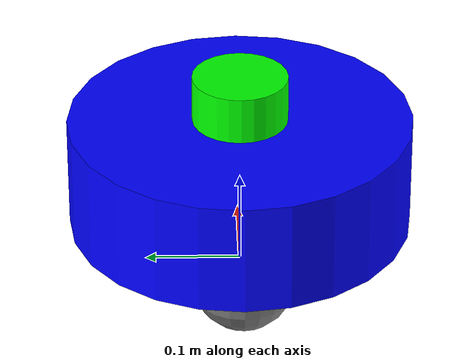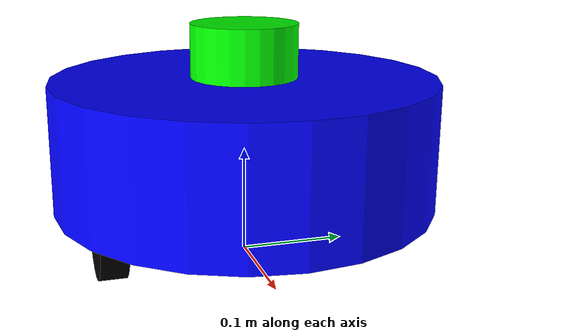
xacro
<?xml version="1.0"?>
<robot name="slam_bot" xmlns:xacro="http://www.ros.org/wiki/xacro">

  <!-- PARAMETERS -->
  <xacro:property name="base_radius" value="0.18"/>
  <xacro:property name="base_height" value="0.12"/>
  <xacro:property name="wheel_radius" value="0.05"/>
  <xacro:property name="wheel_width" value="0.025"/>
  <xacro:property name="wheel_sep" value="0.27"/>
  <xacro:property name="caster_radius" value="0.053"/>
  <xacro:property name="lidar_radius" value="0.05"/>
  <xacro:property name="lidar_height" value="0.05"/>

  <!-- BASE FOOTPRINT -->
  <link name="base_footprint"/>

  <!-- BASE LINK -->
  <link name="base_link">
    <visual>
      <geometry>
        <cylinder radius="${base_radius}" length="${base_height}"/>
      </geometry>
      <material name="blue">
        <color rgba="0 0 1 1"/>
      </material>
    </visual>

    <collision>
      <geometry>
        <cylinder radius="${base_radius}" length="${base_height}"/>
      </geometry>
    </collision>

    <inertial>
  <mass value="8.0"/>
  <inertia
    ixx="0.25"
    ixy="0.0"
    ixz="0.0"
    iyy="0.25"
    iyz="0.0"
    izz="0.35"/>
</inertial>

  </link>

  <joint name="base_joint" type="fixed">
  <parent link="base_footprint"/>
  <child link="base_link"/>
  <origin xyz="0 0 ${wheel_radius + base_height/2}"/>
</joint>

  <!-- LEFT WHEEL -->
  <link name="left_wheel_link">
  <visual>
    <origin rpy="1.5708 0 0"/>
    <geometry>
      <cylinder radius="${wheel_radius}" length="${wheel_width}"/>
    </geometry>
    <material name="black">
      <color rgba="0 0 0 1"/>
    </material>
  </visual>

  <collision>
    <origin rpy="1.5708 0 0"/>
    <geometry>
      <cylinder radius="${wheel_radius}" length="${wheel_width}"/>
    </geometry>
  </collision>

  <inertial>
    <mass value="1.0"/>
    <inertia ixx="0.01" ixy="0.0" ixz="0.0"
             iyy="0.01" iyz="0.0"
             izz="0.01"/>
  </inertial>
</link>

<joint name="left_wheel_joint" type="continuous">
  <parent link="base_link"/>
  <child link="left_wheel_link"/>
  <origin xyz="0.03 ${wheel_sep/2} -${base_height/2}"/>
  <axis xyz="0 1 0"/>
</joint>

  <!-- RIGHT WHEEL -->
<link name="right_wheel_link">
  <visual>
    <origin rpy="1.5708 0 0"/>
    <geometry>
      <cylinder radius="${wheel_radius}" length="${wheel_width}"/>
    </geometry>
    <material name="black">
      <color rgba="0 0 0 1"/>
    </material>
  </visual>

  <collision>
    <origin rpy="1.5708 0 0"/>
    <geometry>
      <cylinder radius="${wheel_radius}" length="${wheel_width}"/>
    </geometry>
  </collision>

  <inertial>
    <mass value="1.0"/>
    <inertia ixx="0.01" ixy="0.0" ixz="0.0"
             iyy="0.01" iyz="0.0"
             izz="0.01"/>
  </inertial>
</link>

<joint name="right_wheel_joint" type="continuous">
  <parent link="base_link"/>
  <child link="right_wheel_link"/>
  <origin xyz="0.03 -${wheel_sep/2} -${base_height/2}"/>
  <axis xyz="0 1 0"/>
</joint>

  <!-- CASTER -->
  <link name="caster_link">
  <visual>
    <geometry>
      <sphere radius="${caster_radius}"/>
    </geometry>
    <material name="gray">
      <color rgba="0.5 0.5 0.5 1"/>
    </material>
  </visual>

  <collision>
    <geometry>
      <sphere radius="${caster_radius}"/>
    </geometry>
  </collision>

  <inertial>
    <mass value="0.3"/>
    <inertia ixx="0.005" ixy="0.0" ixz="0.0"
             iyy="0.005" iyz="0.0"
             izz="0.005"/>
  </inertial>
</link>
<joint name="caster_joint" type="fixed">
  <parent link="base_link"/>
  <child link="caster_link"/>
  <origin xyz="-0.12 0 -${base_height/2}"/>
</joint>

<!-- LIDAR LINK -->
 <link name="lidar_link">
  <visual>
    <geometry>
      <cylinder radius="${lidar_radius}" length="${lidar_height}"/>
    </geometry>
    <material name="green">
      <color rgba="0 1 0 1"/>
    </material>
  </visual>

  <collision>
    <geometry>
      <cylinder radius="${lidar_radius}" length="${lidar_height}"/>
    </geometry>
  </collision>

  <inertial>
    <mass value="0.2"/>
    <inertia ixx="0.005" ixy="0.0" ixz="0.0"
             iyy="0.005" iyz="0.0"
             izz="0.005"/>
  </inertial>
</link>

<joint name="lidar_joint" type="fixed">
  <parent link="base_link"/>
  <child link="lidar_link"/>
  <origin xyz="0 0 ${base_height/2 + lidar_height/2}"/>
</joint>

<gazebo reference="left_wheel_link">
  <mu1>3.0</mu1>
  <mu2>3.0</mu2>

  <kp>1000000.0</kp>
  <kd>100.0</kd>

  <slip1>0.0</slip1>
  <slip2>0.0</slip2>

  <fdir1>1 0 0</fdir1>
</gazebo>

<gazebo reference="right_wheel_link">
  <mu1>3.0</mu1>
  <mu2>3.0</mu2>

  <kp>1000000.0</kp>
  <kd>100.0</kd>

  <slip1>0.0</slip1>
  <slip2>0.0</slip2>

  <fdir1>1 0 0</fdir1>
</gazebo>

<gazebo reference="caster_link">
  <mu1>0.05</mu1>
  <mu2>0.05</mu2>

  <kp>1000000.0</kp>
  <kd>100.0</kd>

  <slip1>1.0</slip1>
  <slip2>1.0</slip2>
</gazebo>

<gazebo reference="base_link">
  <mu1>0.1</mu1>
  <mu2>0.1</mu2>

  <kp>1000000.0</kp>
  <kd>100.0</kd>
</gazebo>

<gazebo reference="lidar_link">
  <sensor type="ray" name="lidar_sensor">
    <always_on>true</always_on>
    <update_rate>15.0</update_rate>
    <visualize>true</visualize>

    <ray>
      <scan>
        <horizontal>
          <samples>360</samples>
          <resolution>1</resolution>
          <min_angle>-3.14159</min_angle>
          <max_angle>3.14159</max_angle>
        </horizontal>
      </scan>
      <range>
        <min>0.12</min>
        <max>10.0</max>
        <resolution>0.01</resolution>
      </range>
    </ray>

    <plugin name="gazebo_ros_laser" filename="libgazebo_ros_ray_sensor.so">
      <ros>
        <remapping>~/out:=scan</remapping>
      </ros>

      <!-- 🔥 THIS LINE FIXES YOUR ISSUE -->
      <output_type>sensor_msgs/LaserScan</output_type>

      <frame_name>lidar_link</frame_name>
    </plugin>

  </sensor>
</gazebo>

<gazebo>
  <plugin name="diff_drive" filename="libgazebo_ros_diff_drive.so">

    <ros>
      <namespace>/</namespace>
    </ros>

    <left_joint>left_wheel_joint</left_joint>
    <right_joint>right_wheel_joint</right_joint>

    <wheel_separation>${wheel_sep}</wheel_separation>
    <wheel_radius>${wheel_radius}</wheel_radius>
    <wheel_diameter>${wheel_radius * 2}</wheel_diameter>

    <command_topic>cmd_vel</command_topic>
    <odometry_topic>odom</odometry_topic>

    <publish_odom>true</publish_odom>
    <publish_odom_tf>true</publish_odom_tf>
    <publish_wheel_tf>true</publish_wheel_tf>

    <odometry_frame>odom</odometry_frame>
    <robot_base_frame>base_footprint</robot_base_frame>

  </plugin>
</gazebo>

</robot>
